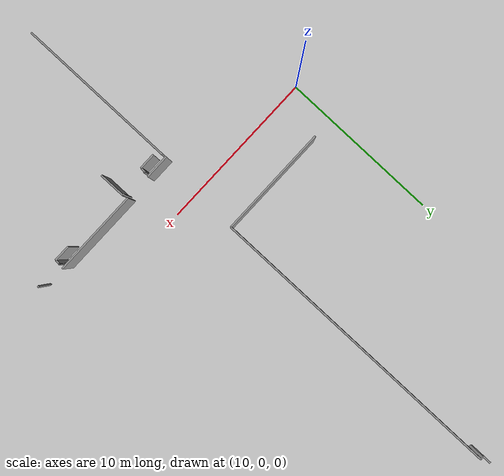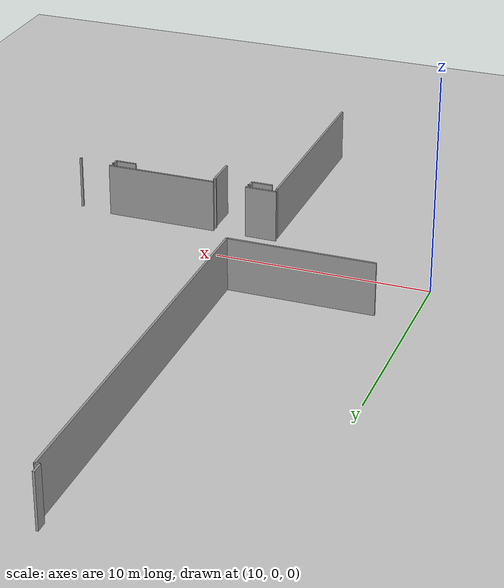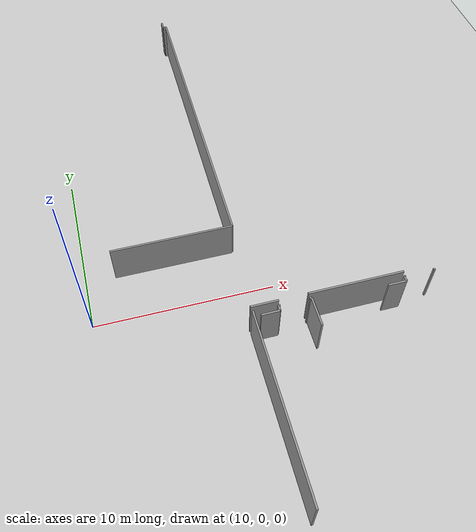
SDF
<sdf version="1.6">
 <world name="default">
  <model name="ground_plane">
   <static>1</static>
   <link name="link">
    <collision name="collision">
     <geometry><plane><normal>0 0 1</normal><size>100 100</size></plane></geometry>
     <surface><friction><ode><mu>100</mu><mu2>50</mu2></ode></friction></surface>
    </collision>
    <visual name="visual">
     <cast_shadows>0</cast_shadows>
     <geometry><plane><normal>0 0 1</normal><size>100 100</size></plane></geometry>
     <material>
      <script><uri>file://media/materials/scripts/gazebo.material</uri><name>Gazebo/Grey</name></script>
     </material>
    </visual>
   </link>
  </model>
  <model name="50045369">
   <static>1</static>
   <link name="Wall_155">
    <collision name="Wall_155_Collision">
     <geometry><box><size>9.71853452385 0.1 2.5</size></box></geometry>
     <pose>4.85926726192 0 1.25 0 0 0</pose>
    </collision>
    <visual name="Wall_155_Visual">
     <pose>4.85926726192 0 1.25 0 0 0</pose>
     <geometry><box><size>9.71853452385 0.1 2.5</size></box></geometry>
     <material>
      <script><uri>file://media/materials/scripts/gazebo.material</uri><name>Gazebo/Grey</name></script>
      <ambient>1 1 1 1</ambient>
     </material>
    </visual>
    <pose>64.0029233262 -24.4648088717 0 0 0 -1.57079632679</pose>
   </link>
   <link name="Wall_161">
    <collision name="Wall_161_Collision">
     <geometry><box><size>0.989863684027 0.1 2.5</size></box></geometry>
     <pose>0.494931842013 0 1.25 0 0 0</pose>
    </collision>
    <visual name="Wall_161_Visual">
     <pose>0.494931842013 0 1.25 0 0 0</pose>
     <geometry><box><size>0.989863684027 0.1 2.5</size></box></geometry>
     <material>
      <script><uri>file://media/materials/scripts/gazebo.material</uri><name>Gazebo/Grey</name></script>
      <ambient>1 1 1 1</ambient>
     </material>
    </visual>
    <pose>64.3406310572 -24.8084903562 0 0 0 0.0</pose>
   </link>
   <link name="Wall_162">
    <collision name="Wall_162_Collision">
     <geometry><box><size>0.305805344603 0.1 2.5</size></box></geometry>
     <pose>0.152902672301 0 1.25 0 0 0</pose>
    </collision>
    <visual name="Wall_162_Visual">
     <pose>0.152902672301 0 1.25 0 0 0</pose>
     <geometry><box><size>0.305805344603 0.1 2.5</size></box></geometry>
     <material>
      <script><uri>file://media/materials/scripts/gazebo.material</uri><name>Gazebo/Grey</name></script>
      <ambient>1 1 1 1</ambient>
     </material>
    </visual>
    <pose>65.3304947412 -24.8084903562 0 0 0 1.57079632679</pose>
   </link>
   <link name="Wall_163">
    <collision name="Wall_163_Collision">
     <geometry><box><size>0.0907502144832 0.1 2.5</size></box></geometry>
     <pose>0.0453751072416 0 1.25 0 0 0</pose>
    </collision>
    <visual name="Wall_163_Visual">
     <pose>0.0453751072416 0 1.25 0 0 0</pose>
     <geometry><box><size>0.0907502144832 0.1 2.5</size></box></geometry>
     <material>
      <script><uri>file://media/materials/scripts/gazebo.material</uri><name>Gazebo/Grey</name></script>
      <ambient>1 1 1 1</ambient>
     </material>
    </visual>
    <pose>65.3304947412 -24.5026850116 0 0 0 0.0</pose>
   </link>
   <link name="Wall_164">
    <collision name="Wall_164_Collision">
     <geometry><box><size>0.104477137682 0.1 2.5</size></box></geometry>
     <pose>0.0522385688412 0 1.25 0 0 0</pose>
    </collision>
    <visual name="Wall_164_Visual">
     <pose>0.0522385688412 0 1.25 0 0 0</pose>
     <geometry><box><size>0.104477137682 0.1 2.5</size></box></geometry>
     <material>
      <script><uri>file://media/materials/scripts/gazebo.material</uri><name>Gazebo/Grey</name></script>
      <ambient>1 1 1 1</ambient>
     </material>
    </visual>
    <pose>66.9815385593 -24.5026850116 0 0 0 0.0</pose>
   </link>
   <link name="Wall_165">
    <collision name="Wall_165_Collision">
     <geometry><box><size>1.61481999301 0.1 2.5</size></box></geometry>
     <pose>0.807409996505 0 1.25 0 0 0</pose>
    </collision>
    <visual name="Wall_165_Visual">
     <pose>0.807409996505 0 1.25 0 0 0</pose>
     <geometry><box><size>1.61481999301 0.1 2.5</size></box></geometry>
     <material>
      <script><uri>file://media/materials/scripts/gazebo.material</uri><name>Gazebo/Grey</name></script>
      <ambient>1 1 1 1</ambient>
     </material>
    </visual>
    <pose>67.086015697 -24.5026850116 0 0 0 -1.57079632679</pose>
   </link>
   <link name="Wall_175">
    <collision name="Wall_175_Collision">
     <geometry><box><size>1.00473451749 0.1 2.5</size></box></geometry>
     <pose>0.502367258746 0 1.25 0 0 0</pose>
    </collision>
    <visual name="Wall_175_Visual">
     <pose>0.502367258746 0 1.25 0 0 0</pose>
     <geometry><box><size>1.00473451749 0.1 2.5</size></box></geometry>
     <material>
      <script><uri>file://media/materials/scripts/gazebo.material</uri><name>Gazebo/Grey</name></script>
      <ambient>1 1 1 1</ambient>
     </material>
    </visual>
    <pose>71.1470242445 -24.8017539957 0 0 0 0.0</pose>
   </link>
   <link name="Wall_176">
    <collision name="Wall_176_Collision">
     <geometry><box><size>0.297035365892 0.1 2.5</size></box></geometry>
     <pose>0.148517682946 0 1.25 0 0 0</pose>
    </collision>
    <visual name="Wall_176_Visual">
     <pose>0.148517682946 0 1.25 0 0 0</pose>
     <geometry><box><size>0.297035365892 0.1 2.5</size></box></geometry>
     <material>
      <script><uri>file://media/materials/scripts/gazebo.material</uri><name>Gazebo/Grey</name></script>
      <ambient>1 1 1 1</ambient>
     </material>
    </visual>
    <pose>72.151758762 -24.8017539957 0 0 0 1.57079632679</pose>
   </link>
   <link name="Wall_177">
    <collision name="Wall_177_Collision">
     <geometry><box><size>0.0695243239808 0.1 2.5</size></box></geometry>
     <pose>0.0347621619904 0 1.25 0 0 0</pose>
    </collision>
    <visual name="Wall_177_Visual">
     <pose>0.0347621619904 0 1.25 0 0 0</pose>
     <geometry><box><size>0.0695243239808 0.1 2.5</size></box></geometry>
     <material>
      <script><uri>file://media/materials/scripts/gazebo.material</uri><name>Gazebo/Grey</name></script>
      <ambient>1 1 1 1</ambient>
     </material>
    </visual>
    <pose>72.151758762 -24.5047186298 0 0 0 0.0</pose>
   </link>
   <link name="Wall_178">
    <collision name="Wall_178_Collision">
     <geometry><box><size>0.100409901179 0.1 2.5</size></box></geometry>
     <pose>0.0502049505894 0 1.25 0 0 0</pose>
    </collision>
    <visual name="Wall_178_Visual">
     <pose>0.0502049505894 0 1.25 0 0 0</pose>
     <geometry><box><size>0.100409901179 0.1 2.5</size></box></geometry>
     <material>
      <script><uri>file://media/materials/scripts/gazebo.material</uri><name>Gazebo/Grey</name></script>
      <ambient>1 1 1 1</ambient>
     </material>
    </visual>
    <pose>73.7926344889 -24.5047186298 0 0 0 0.0</pose>
   </link>
   <link name="Wall_211">
    <collision name="Wall_211_Collision">
     <geometry><box><size>0.511327889168 0.1 2.5</size></box></geometry>
     <pose>0.255663944584 0 1.25 0 0 0</pose>
    </collision>
    <visual name="Wall_211_Visual">
     <pose>0.255663944584 0 1.25 0 0 0</pose>
     <geometry><box><size>0.511327889168 0.1 2.5</size></box></geometry>
     <material>
      <script><uri>file://media/materials/scripts/gazebo.material</uri><name>Gazebo/Grey</name></script>
      <ambient>1 1 1 1</ambient>
     </material>
    </visual>
    <pose>64.1645959772 -0.0 0 0 0 -1.57079632679</pose>
   </link>
   <link name="Wall_212">
    <collision name="Wall_212_Collision">
     <geometry><box><size>0.205522544565 0.1 2.5</size></box></geometry>
     <pose>0.102761272282 0 1.25 0 0 0</pose>
    </collision>
    <visual name="Wall_212_Visual">
     <pose>0.102761272282 0 1.25 0 0 0</pose>
     <geometry><box><size>0.205522544565 0.1 2.5</size></box></geometry>
     <material>
      <script><uri>file://media/materials/scripts/gazebo.material</uri><name>Gazebo/Grey</name></script>
      <ambient>1 1 1 1</ambient>
     </material>
    </visual>
    <pose>64.1645959772 -0.511327889168 0 0 0 0.0</pose>
   </link>
   <link name="Wall_213">
    <collision name="Wall_213_Collision">
     <geometry><box><size>18.5336341394 0.1 2.5</size></box></geometry>
     <pose>9.26681706968 0 1.25 0 0 0</pose>
    </collision>
    <visual name="Wall_213_Visual">
     <pose>9.26681706968 0 1.25 0 0 0</pose>
     <geometry><box><size>18.5336341394 0.1 2.5</size></box></geometry>
     <material>
      <script><uri>file://media/materials/scripts/gazebo.material</uri><name>Gazebo/Grey</name></script>
      <ambient>1 1 1 1</ambient>
     </material>
    </visual>
    <pose>64.3701185218 -0.511327889168 0 0 0 -1.57079632679</pose>
   </link>
   <link name="Wall_214">
    <collision name="Wall_214_Collision">
     <geometry><box><size>6.75250230371 0.1 2.5</size></box></geometry>
     <pose>3.37625115185 0 1.25 0 0 0</pose>
    </collision>
    <visual name="Wall_214_Visual">
     <pose>3.37625115185 0 1.25 0 0 0</pose>
     <geometry><box><size>6.75250230371 0.1 2.5</size></box></geometry>
     <material>
      <script><uri>file://media/materials/scripts/gazebo.material</uri><name>Gazebo/Grey</name></script>
      <ambient>1 1 1 1</ambient>
     </material>
    </visual>
    <pose>64.3701185218 -19.0449620285 0 0 0 3.14159265359</pose>
   </link>
   <link name="Wall_229">
    <collision name="Wall_229_Collision">
     <geometry><box><size>5.24775189857 0.1 2.5</size></box></geometry>
     <pose>2.62387594929 0 1.25 0 0 0</pose>
    </collision>
    <visual name="Wall_229_Visual">
     <pose>2.62387594929 0 1.25 0 0 0</pose>
     <geometry><box><size>5.24775189857 0.1 2.5</size></box></geometry>
     <material>
      <script><uri>file://media/materials/scripts/gazebo.material</uri><name>Gazebo/Grey</name></script>
      <ambient>1 1 1 1</ambient>
     </material>
    </visual>
    <pose>72.2493724381 -24.2216643894 0 0 0 3.14159265359</pose>
   </link>
   <link name="Wall_230">
    <collision name="Wall_230_Collision">
     <geometry><box><size>1.49864955038 0.1 2.5</size></box></geometry>
     <pose>0.74932477519 0 1.25 0 0 0</pose>
    </collision>
    <visual name="Wall_230_Visual">
     <pose>0.74932477519 0 1.25 0 0 0</pose>
     <geometry><box><size>1.49864955038 0.1 2.5</size></box></geometry>
     <material>
      <script><uri>file://media/materials/scripts/gazebo.material</uri><name>Gazebo/Grey</name></script>
      <ambient>1 1 1 1</ambient>
     </material>
    </visual>
    <pose>65.4326840583 -24.2216643894 0 0 0 3.14159265359</pose>
   </link>
   <pose>-45.95 21.8978774109 0 0 0 0</pose>
  </model>
 </world>
</sdf>
